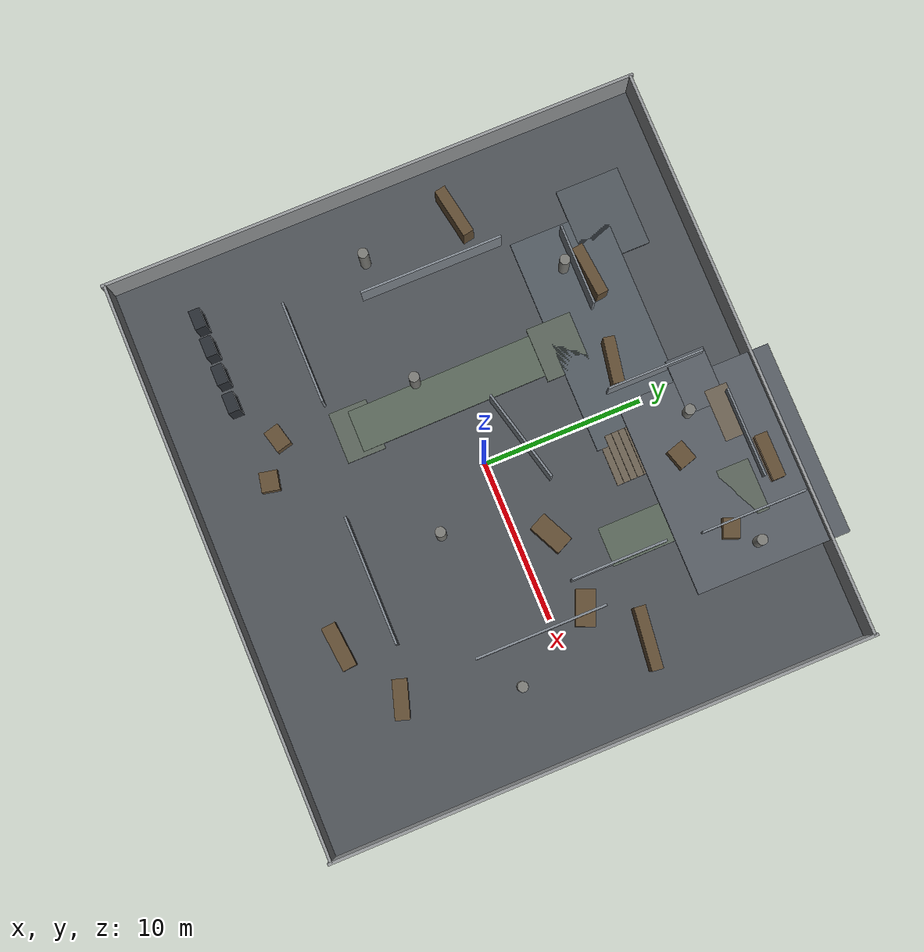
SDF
<?xml version="1.0"?>
<sdf version="1.8">
  <world name="large_multilevel_complex_dynamic">
    <plugin name="gz::sim::systems::Physics" filename="ignition-gazebo-physics-system"/>
    <plugin name="gz::sim::systems::UserCommands" filename="ignition-gazebo-user-commands-system"/>
    <plugin name="gz::sim::systems::SceneBroadcaster" filename="ignition-gazebo-scene-broadcaster-system"/>
    <plugin name="gz::sim::systems::Sensors" filename="ignition-gazebo-sensors-system">
      <render_engine>ogre2</render_engine>
    </plugin>
    <plugin name="gz::sim::systems::Imu" filename="ignition-gazebo-imu-system"/>

    <physics name="large_multilevel_physics" type="ignored">
      <max_step_size>0.01</max_step_size>
      <real_time_update_rate>100</real_time_update_rate>
      <real_time_factor>1.0</real_time_factor>
    </physics>
    <gravity>0 0 -9.8</gravity>
    <magnetic_field>6.0e-06 2.3e-05 -4.2e-05</magnetic_field>
    <scene>
      <ambient>0.66 0.67 0.70 1</ambient>
      <background>0.11 0.12 0.14 1</background>
      <shadows>false</shadows>
    </scene>

    <gui fullscreen="0">
      <camera name="user_camera">
        <pose>-13.5 -18.0 8.0 0 0.48 0.74</pose>
        <projection_type>perspective</projection_type>
      </camera>
    </gui>

    <light name="sun" type="directional">
      <cast_shadows>false</cast_shadows>
      <pose>0 0 18 0 0 0</pose>
      <diffuse>0.95 0.95 0.95 1</diffuse>
      <specular>0.12 0.12 0.12 1</specular>
      <attenuation>
        <range>1000</range>
        <constant>0.9</constant>
        <linear>0.01</linear>
        <quadratic>0.001</quadratic>
      </attenuation>
      <direction>-0.25 0.35 -1</direction>
    </light>

    <model name="floor_level_0">
      <static>true</static>
      <pose>0.000 0.000 -0.050 0.0000 0.0000 0.0000</pose>
      <link name="link">
        <collision name="collision"><geometry><box><size>36.000 34.000 0.100</size></box></geometry></collision>
        <visual name="visual"><geometry><box><size>36.000 34.000 0.100</size></box></geometry><material><ambient>0.30 0.32 0.34 1</ambient><diffuse>0.30 0.32 0.34 1</diffuse></material></visual>
      </link>
    </model>
    <model name="second_floor_deck">
      <static>true</static>
      <pose>-4.800 9.400 0.860 0.0000 0.0000 0.0000</pose>
      <link name="link">
        <collision name="collision"><geometry><box><size>13.500 6.000 0.160</size></box></geometry></collision>
        <visual name="visual"><geometry><box><size>13.500 6.000 0.160</size></box></geometry><material><ambient>0.32 0.35 0.38 1</ambient><diffuse>0.32 0.35 0.38 1</diffuse></material></visual>
      </link>
    </model>
    <model name="third_floor_deck">
      <static>true</static>
      <pose>6.000 13.200 2.120 0.0000 0.0000 0.0000</pose>
      <link name="link">
        <collision name="collision"><geometry><box><size>12.000 9.600 0.160</size></box></geometry></collision>
        <visual name="visual"><geometry><box><size>12.000 9.600 0.160</size></box></geometry><material><ambient>0.34 0.36 0.39 1</ambient><diffuse>0.34 0.36 0.39 1</diffuse></material></visual>
      </link>
    </model>
    <model name="north_mezzanine_walkway">
      <static>true</static>
      <pose>-11.000 12.200 0.860 0.0000 0.0000 0.0000</pose>
      <link name="link">
        <collision name="collision"><geometry><box><size>5.000 4.000 0.160</size></box></geometry></collision>
        <visual name="visual"><geometry><box><size>5.000 4.000 0.160</size></box></geometry><material><ambient>0.31 0.34 0.36 1</ambient><diffuse>0.31 0.34 0.36 1</diffuse></material></visual>
      </link>
    </model>
    <model name="third_observation_bridge">
      <static>true</static>
      <pose>0.400 13.200 2.120 0.0000 0.0000 0.0000</pose>
      <link name="link">
        <collision name="collision"><geometry><box><size>3.400 2.400 0.160</size></box></geometry></collision>
        <visual name="visual"><geometry><box><size>3.400 2.400 0.160</size></box></geometry><material><ambient>0.34 0.36 0.39 1</ambient><diffuse>0.34 0.36 0.39 1</diffuse></material></visual>
      </link>
    </model>
    <model name="lower_access_ramp">
      <static>true</static>
      <pose>-4.700 -0.200 0.440 0.0000 -0.0678 1.5708</pose>
      <link name="link">
        <collision name="collision"><geometry><box><size>12.400 2.600 0.160</size></box></geometry></collision>
        <visual name="visual"><geometry><box><size>12.400 2.600 0.160</size></box></geometry><material><ambient>0.35 0.40 0.35 1</ambient><diffuse>0.35 0.40 0.35 1</diffuse></material></visual>
      </link>
    </model>
    <model name="ramp_lower_landing">
      <static>true</static>
      <pose>-4.700 -6.300 0.040 0.0000 0.0000 0.0000</pose>
      <link name="link">
        <collision name="collision"><geometry><box><size>3.200 2.400 0.120</size></box></geometry></collision>
        <visual name="visual"><geometry><box><size>3.200 2.400 0.120</size></box></geometry><material><ambient>0.35 0.39 0.35 1</ambient><diffuse>0.35 0.39 0.35 1</diffuse></material></visual>
      </link>
    </model>
    <model name="ramp_upper_landing">
      <static>true</static>
      <pose>-4.700 6.700 0.860 0.0000 0.0000 0.0000</pose>
      <link name="link">
        <collision name="collision"><geometry><box><size>3.400 2.800 0.160</size></box></geometry></collision>
        <visual name="visual"><geometry><box><size>3.400 2.800 0.160</size></box></geometry><material><ambient>0.35 0.39 0.35 1</ambient><diffuse>0.35 0.39 0.35 1</diffuse></material></visual>
      </link>
    </model>
    <model name="north_stair_step_01">
      <static>true</static>
      <pose>2.800 6.910 0.899 0.0000 0.0000 0.0000</pose>
      <link name="link">
        <collision name="collision"><geometry><box><size>3.000 0.420 0.080</size></box></geometry></collision>
        <visual name="visual"><geometry><box><size>3.000 0.420 0.080</size></box></geometry><material><ambient>0.42 0.38 0.32 1</ambient><diffuse>0.42 0.38 0.32 1</diffuse></material></visual>
      </link>
    </model>
    <model name="north_stair_step_02">
      <static>true</static>
      <pose>2.800 7.330 0.978 0.0000 0.0000 0.0000</pose>
      <link name="link">
        <collision name="collision"><geometry><box><size>3.000 0.420 0.080</size></box></geometry></collision>
        <visual name="visual"><geometry><box><size>3.000 0.420 0.080</size></box></geometry><material><ambient>0.42 0.38 0.32 1</ambient><diffuse>0.42 0.38 0.32 1</diffuse></material></visual>
      </link>
    </model>
    <model name="north_stair_step_03">
      <static>true</static>
      <pose>2.800 7.750 1.056 0.0000 0.0000 0.0000</pose>
      <link name="link">
        <collision name="collision"><geometry><box><size>3.000 0.420 0.080</size></box></geometry></collision>
        <visual name="visual"><geometry><box><size>3.000 0.420 0.080</size></box></geometry><material><ambient>0.42 0.38 0.32 1</ambient><diffuse>0.42 0.38 0.32 1</diffuse></material></visual>
      </link>
    </model>
    <model name="north_stair_step_04">
      <static>true</static>
      <pose>2.800 8.170 1.135 0.0000 0.0000 0.0000</pose>
      <link name="link">
        <collision name="collision"><geometry><box><size>3.000 0.420 0.080</size></box></geometry></collision>
        <visual name="visual"><geometry><box><size>3.000 0.420 0.080</size></box></geometry><material><ambient>0.42 0.38 0.32 1</ambient><diffuse>0.42 0.38 0.32 1</diffuse></material></visual>
      </link>
    </model>
    <model name="north_stair_step_05">
      <static>true</static>
      <pose>2.800 8.590 1.214 0.0000 0.0000 0.0000</pose>
      <link name="link">
        <collision name="collision"><geometry><box><size>3.000 0.420 0.080</size></box></geometry></collision>
        <visual name="visual"><geometry><box><size>3.000 0.420 0.080</size></box></geometry><material><ambient>0.42 0.38 0.32 1</ambient><diffuse>0.42 0.38 0.32 1</diffuse></material></visual>
      </link>
    </model>
    <model name="north_stair_step_06">
      <static>true</static>
      <pose>2.800 9.010 1.292 0.0000 0.0000 0.0000</pose>
      <link name="link">
        <collision name="collision"><geometry><box><size>3.000 0.420 0.080</size></box></geometry></collision>
        <visual name="visual"><geometry><box><size>3.000 0.420 0.080</size></box></geometry><material><ambient>0.42 0.38 0.32 1</ambient><diffuse>0.42 0.38 0.32 1</diffuse></material></visual>
      </link>
    </model>
    <model name="north_stair_step_07">
      <static>true</static>
      <pose>2.800 9.430 1.371 0.0000 0.0000 0.0000</pose>
      <link name="link">
        <collision name="collision"><geometry><box><size>3.000 0.420 0.080</size></box></geometry></collision>
        <visual name="visual"><geometry><box><size>3.000 0.420 0.080</size></box></geometry><material><ambient>0.42 0.38 0.32 1</ambient><diffuse>0.42 0.38 0.32 1</diffuse></material></visual>
      </link>
    </model>
    <model name="north_stair_step_08">
      <static>true</static>
      <pose>2.800 9.850 1.450 0.0000 0.0000 0.0000</pose>
      <link name="link">
        <collision name="collision"><geometry><box><size>3.000 0.420 0.080</size></box></geometry></collision>
        <visual name="visual"><geometry><box><size>3.000 0.420 0.080</size></box></geometry><material><ambient>0.42 0.38 0.32 1</ambient><diffuse>0.42 0.38 0.32 1</diffuse></material></visual>
      </link>
    </model>
    <model name="north_stair_step_09">
      <static>true</static>
      <pose>2.800 10.270 1.529 0.0000 0.0000 0.0000</pose>
      <link name="link">
        <collision name="collision"><geometry><box><size>3.000 0.420 0.080</size></box></geometry></collision>
        <visual name="visual"><geometry><box><size>3.000 0.420 0.080</size></box></geometry><material><ambient>0.42 0.38 0.32 1</ambient><diffuse>0.42 0.38 0.32 1</diffuse></material></visual>
      </link>
    </model>
    <model name="north_stair_step_10">
      <static>true</static>
      <pose>2.800 10.690 1.607 0.0000 0.0000 0.0000</pose>
      <link name="link">
        <collision name="collision"><geometry><box><size>3.000 0.420 0.080</size></box></geometry></collision>
        <visual name="visual"><geometry><box><size>3.000 0.420 0.080</size></box></geometry><material><ambient>0.42 0.38 0.32 1</ambient><diffuse>0.42 0.38 0.32 1</diffuse></material></visual>
      </link>
    </model>
    <model name="north_stair_step_11">
      <static>true</static>
      <pose>2.800 11.110 1.686 0.0000 0.0000 0.0000</pose>
      <link name="link">
        <collision name="collision"><geometry><box><size>3.000 0.420 0.080</size></box></geometry></collision>
        <visual name="visual"><geometry><box><size>3.000 0.420 0.080</size></box></geometry><material><ambient>0.42 0.38 0.32 1</ambient><diffuse>0.42 0.38 0.32 1</diffuse></material></visual>
      </link>
    </model>
    <model name="north_stair_step_12">
      <static>true</static>
      <pose>2.800 11.530 1.765 0.0000 0.0000 0.0000</pose>
      <link name="link">
        <collision name="collision"><geometry><box><size>3.000 0.420 0.080</size></box></geometry></collision>
        <visual name="visual"><geometry><box><size>3.000 0.420 0.080</size></box></geometry><material><ambient>0.42 0.38 0.32 1</ambient><diffuse>0.42 0.38 0.32 1</diffuse></material></visual>
      </link>
    </model>
    <model name="north_stair_step_13">
      <static>true</static>
      <pose>2.800 11.950 1.844 0.0000 0.0000 0.0000</pose>
      <link name="link">
        <collision name="collision"><geometry><box><size>3.000 0.420 0.080</size></box></geometry></collision>
        <visual name="visual"><geometry><box><size>3.000 0.420 0.080</size></box></geometry><material><ambient>0.42 0.38 0.32 1</ambient><diffuse>0.42 0.38 0.32 1</diffuse></material></visual>
      </link>
    </model>
    <model name="north_stair_step_14">
      <static>true</static>
      <pose>2.800 12.370 1.923 0.0000 0.0000 0.0000</pose>
      <link name="link">
        <collision name="collision"><geometry><box><size>3.000 0.420 0.080</size></box></geometry></collision>
        <visual name="visual"><geometry><box><size>3.000 0.420 0.080</size></box></geometry><material><ambient>0.42 0.38 0.32 1</ambient><diffuse>0.42 0.38 0.32 1</diffuse></material></visual>
      </link>
    </model>
    <model name="north_stair_step_15">
      <static>true</static>
      <pose>2.800 12.790 2.001 0.0000 0.0000 0.0000</pose>
      <link name="link">
        <collision name="collision"><geometry><box><size>3.000 0.420 0.080</size></box></geometry></collision>
        <visual name="visual"><geometry><box><size>3.000 0.420 0.080</size></box></geometry><material><ambient>0.42 0.38 0.32 1</ambient><diffuse>0.42 0.38 0.32 1</diffuse></material></visual>
      </link>
    </model>
    <model name="north_stair_step_16">
      <static>true</static>
      <pose>2.800 13.210 2.080 0.0000 0.0000 0.0000</pose>
      <link name="link">
        <collision name="collision"><geometry><box><size>3.000 0.420 0.080</size></box></geometry></collision>
        <visual name="visual"><geometry><box><size>3.000 0.420 0.080</size></box></geometry><material><ambient>0.42 0.38 0.32 1</ambient><diffuse>0.42 0.38 0.32 1</diffuse></material></visual>
      </link>
    </model>
    <model name="stair_mid_landing">
      <static>true</static>
      <pose>2.800 14.120 2.120 0.0000 0.0000 0.0000</pose>
      <link name="link">
        <collision name="collision"><geometry><box><size>3.200 1.400 0.160</size></box></geometry></collision>
        <visual name="visual"><geometry><box><size>3.200 1.400 0.160</size></box></geometry><material><ambient>0.42 0.38 0.32 1</ambient><diffuse>0.42 0.38 0.32 1</diffuse></material></visual>
      </link>
    </model>
    <model name="upper_service_ramp">
      <static>true</static>
      <pose>7.400 9.000 1.550 0.1150 0.0000 0.0000</pose>
      <link name="link">
        <collision name="collision"><geometry><box><size>2.400 8.800 0.140</size></box></geometry></collision>
        <visual name="visual"><geometry><box><size>2.400 8.800 0.140</size></box></geometry><material><ambient>0.35 0.40 0.35 1</ambient><diffuse>0.35 0.40 0.35 1</diffuse></material></visual>
      </link>
    </model>
    <model name="upper_ramp_landing">
      <static>true</static>
      <pose>7.400 13.200 2.120 0.0000 0.0000 0.0000</pose>
      <link name="link">
        <collision name="collision"><geometry><box><size>3.200 2.000 0.160</size></box></geometry></collision>
        <visual name="visual"><geometry><box><size>3.200 2.000 0.160</size></box></geometry><material><ambient>0.35 0.39 0.35 1</ambient><diffuse>0.35 0.39 0.35 1</diffuse></material></visual>
      </link>
    </model>
    <model name="north_wall">
      <static>true</static>
      <pose>0.000 16.800 1.350 0.0000 0.0000 0.0000</pose>
      <link name="link">
        <collision name="collision"><geometry><box><size>36.000 0.180 2.700</size></box></geometry></collision>
        <visual name="visual"><geometry><box><size>36.000 0.180 2.700</size></box></geometry><material><ambient>0.58 0.59 0.60 1</ambient><diffuse>0.58 0.59 0.60 1</diffuse></material></visual>
      </link>
    </model>
    <model name="south_wall">
      <static>true</static>
      <pose>0.000 -16.800 1.350 0.0000 0.0000 0.0000</pose>
      <link name="link">
        <collision name="collision"><geometry><box><size>36.000 0.180 2.700</size></box></geometry></collision>
        <visual name="visual"><geometry><box><size>36.000 0.180 2.700</size></box></geometry><material><ambient>0.58 0.59 0.60 1</ambient><diffuse>0.58 0.59 0.60 1</diffuse></material></visual>
      </link>
    </model>
    <model name="west_wall">
      <static>true</static>
      <pose>-18.000 0.000 1.350 0.0000 0.0000 0.0000</pose>
      <link name="link">
        <collision name="collision"><geometry><box><size>0.180 34.000 2.700</size></box></geometry></collision>
        <visual name="visual"><geometry><box><size>0.180 34.000 2.700</size></box></geometry><material><ambient>0.58 0.59 0.60 1</ambient><diffuse>0.58 0.59 0.60 1</diffuse></material></visual>
      </link>
    </model>
    <model name="east_wall">
      <static>true</static>
      <pose>18.000 0.000 1.350 0.0000 0.0000 0.0000</pose>
      <link name="link">
        <collision name="collision"><geometry><box><size>0.180 34.000 2.700</size></box></geometry></collision>
        <visual name="visual"><geometry><box><size>0.180 34.000 2.700</size></box></geometry><material><ambient>0.58 0.59 0.60 1</ambient><diffuse>0.58 0.59 0.60 1</diffuse></material></visual>
      </link>
    </model>
    <model name="floor_partition_00">
      <static>true</static>
      <pose>-10.000 -7.500 1.050 0.0000 0.0000 0.0000</pose>
      <link name="link">
        <collision name="collision"><geometry><box><size>6.400 0.140 2.100</size></box></geometry></collision>
        <visual name="visual"><geometry><box><size>6.400 0.140 2.100</size></box></geometry><material><ambient>0.50 0.53 0.56 1</ambient><diffuse>0.50 0.53 0.56 1</diffuse></material></visual>
      </link>
    </model>
    <model name="floor_partition_01">
      <static>true</static>
      <pose>4.000 -8.800 1.050 0.0000 0.0000 0.0000</pose>
      <link name="link">
        <collision name="collision"><geometry><box><size>8.000 0.140 2.100</size></box></geometry></collision>
        <visual name="visual"><geometry><box><size>8.000 0.140 2.100</size></box></geometry><material><ambient>0.50 0.53 0.56 1</ambient><diffuse>0.50 0.53 0.56 1</diffuse></material></visual>
      </link>
    </model>
    <model name="floor_partition_02">
      <static>true</static>
      <pose>-12.000 1.500 1.050 0.0000 0.0000 0.0000</pose>
      <link name="link">
        <collision name="collision"><geometry><box><size>0.140 9.000 2.100</size></box></geometry></collision>
        <visual name="visual"><geometry><box><size>0.140 9.000 2.100</size></box></geometry><material><ambient>0.50 0.53 0.56 1</ambient><diffuse>0.50 0.53 0.56 1</diffuse></material></visual>
      </link>
    </model>
    <model name="floor_partition_03">
      <static>true</static>
      <pose>10.500 -0.800 1.050 0.0000 0.0000 0.0000</pose>
      <link name="link">
        <collision name="collision"><geometry><box><size>0.140 8.200 2.100</size></box></geometry></collision>
        <visual name="visual"><geometry><box><size>0.140 8.200 2.100</size></box></geometry><material><ambient>0.50 0.53 0.56 1</ambient><diffuse>0.50 0.53 0.56 1</diffuse></material></visual>
      </link>
    </model>
    <model name="floor_partition_04">
      <static>true</static>
      <pose>-0.500 2.500 1.050 0.0000 0.0000 0.2500</pose>
      <link name="link">
        <collision name="collision"><geometry><box><size>6.000 0.140 2.100</size></box></geometry></collision>
        <visual name="visual"><geometry><box><size>6.000 0.140 2.100</size></box></geometry><material><ambient>0.50 0.53 0.56 1</ambient><diffuse>0.50 0.53 0.56 1</diffuse></material></visual>
      </link>
    </model>
    <model name="floor_partition_05">
      <static>true</static>
      <pose>8.400 5.000 1.050 0.0000 0.0000 0.0000</pose>
      <link name="link">
        <collision name="collision"><geometry><box><size>0.140 6.000 2.100</size></box></geometry></collision>
        <visual name="visual"><geometry><box><size>0.140 6.000 2.100</size></box></geometry><material><ambient>0.50 0.53 0.56 1</ambient><diffuse>0.50 0.53 0.56 1</diffuse></material></visual>
      </link>
    </model>
    <model name="upper_partition_00">
      <static>true</static>
      <pose>-8.500 9.400 2.050 0.0000 0.0000 0.0000</pose>
      <link name="link">
        <collision name="collision"><geometry><box><size>5.000 0.120 2.000</size></box></geometry></collision>
        <visual name="visual"><geometry><box><size>5.000 0.120 2.000</size></box></geometry><material><ambient>0.50 0.53 0.56 1</ambient><diffuse>0.50 0.53 0.56 1</diffuse></material></visual>
      </link>
    </model>
    <model name="upper_partition_01">
      <static>true</static>
      <pose>-1.000 11.200 2.050 0.0000 0.0000 0.0000</pose>
      <link name="link">
        <collision name="collision"><geometry><box><size>0.120 6.000 2.000</size></box></geometry></collision>
        <visual name="visual"><geometry><box><size>0.120 6.000 2.000</size></box></geometry><material><ambient>0.50 0.53 0.56 1</ambient><diffuse>0.50 0.53 0.56 1</diffuse></material></visual>
      </link>
    </model>
    <model name="upper_partition_02">
      <static>true</static>
      <pose>8.800 13.200 2.050 0.0000 0.0000 0.0000</pose>
      <link name="link">
        <collision name="collision"><geometry><box><size>0.120 6.500 2.000</size></box></geometry></collision>
        <visual name="visual"><geometry><box><size>0.120 6.500 2.000</size></box></geometry><material><ambient>0.50 0.53 0.56 1</ambient><diffuse>0.50 0.53 0.56 1</diffuse></material></visual>
      </link>
    </model>
    <model name="upper_partition_03">
      <static>true</static>
      <pose>4.400 14.600 2.050 0.0000 0.0000 0.0000</pose>
      <link name="link">
        <collision name="collision"><geometry><box><size>5.500 0.120 2.000</size></box></geometry></collision>
        <visual name="visual"><geometry><box><size>5.500 0.120 2.000</size></box></geometry><material><ambient>0.50 0.53 0.56 1</ambient><diffuse>0.50 0.53 0.56 1</diffuse></material></visual>
      </link>
    </model>
    <model name="server_rack_00">
      <static>true</static>
      <pose>-14.200 -12.500 1.050 0.0000 0.0000 0.0000</pose>
      <link name="link">
        <collision name="collision"><geometry><box><size>1.200 0.700 2.100</size></box></geometry></collision>
        <visual name="visual"><geometry><box><size>1.200 0.700 2.100</size></box></geometry><material><ambient>0.16 0.18 0.20 1</ambient><diffuse>0.16 0.18 0.20 1</diffuse></material></visual>
      </link>
    </model>
    <model name="server_rack_01">
      <static>true</static>
      <pose>-12.400 -12.500 1.050 0.0000 0.0000 0.0000</pose>
      <link name="link">
        <collision name="collision"><geometry><box><size>1.200 0.700 2.100</size></box></geometry></collision>
        <visual name="visual"><geometry><box><size>1.200 0.700 2.100</size></box></geometry><material><ambient>0.16 0.18 0.20 1</ambient><diffuse>0.16 0.18 0.20 1</diffuse></material></visual>
      </link>
    </model>
    <model name="server_rack_02">
      <static>true</static>
      <pose>-10.600 -12.500 1.050 0.0000 0.0000 0.0000</pose>
      <link name="link">
        <collision name="collision"><geometry><box><size>1.200 0.700 2.100</size></box></geometry></collision>
        <visual name="visual"><geometry><box><size>1.200 0.700 2.100</size></box></geometry><material><ambient>0.16 0.18 0.20 1</ambient><diffuse>0.16 0.18 0.20 1</diffuse></material></visual>
      </link>
    </model>
    <model name="server_rack_03">
      <static>true</static>
      <pose>-8.800 -12.500 1.050 0.0000 0.0000 0.0000</pose>
      <link name="link">
        <collision name="collision"><geometry><box><size>1.200 0.700 2.100</size></box></geometry></collision>
        <visual name="visual"><geometry><box><size>1.200 0.700 2.100</size></box></geometry><material><ambient>0.16 0.18 0.20 1</ambient><diffuse>0.16 0.18 0.20 1</diffuse></material></visual>
      </link>
    </model>
    <model name="crate_cluster_04">
      <static>true</static>
      <pose>-6.000 -10.800 0.450 0.0000 0.0000 0.2500</pose>
      <link name="link">
        <collision name="collision"><geometry><box><size>1.400 1.000 0.900</size></box></geometry></collision>
        <visual name="visual"><geometry><box><size>1.400 1.000 0.900</size></box></geometry><material><ambient>0.38 0.30 0.20 1</ambient><diffuse>0.38 0.30 0.20 1</diffuse></material></visual>
      </link>
    </model>
    <model name="crate_cluster_05">
      <static>true</static>
      <pose>-3.800 -12.200 0.400 0.0000 0.0000 -0.2000</pose>
      <link name="link">
        <collision name="collision"><geometry><box><size>1.200 1.100 0.800</size></box></geometry></collision>
        <visual name="visual"><geometry><box><size>1.200 1.100 0.800</size></box></geometry><material><ambient>0.38 0.30 0.20 1</ambient><diffuse>0.38 0.30 0.20 1</diffuse></material></visual>
      </link>
    </model>
    <model name="workbench_06">
      <static>true</static>
      <pose>6.800 -12.000 0.450 0.0000 0.0000 0.1000</pose>
      <link name="link">
        <collision name="collision"><geometry><box><size>2.800 0.900 0.900</size></box></geometry></collision>
        <visual name="visual"><geometry><box><size>2.800 0.900 0.900</size></box></geometry><material><ambient>0.38 0.30 0.20 1</ambient><diffuse>0.38 0.30 0.20 1</diffuse></material></visual>
      </link>
    </model>
    <model name="workbench_07">
      <static>true</static>
      <pose>11.000 -9.800 0.450 0.0000 0.0000 -0.3000</pose>
      <link name="link">
        <collision name="collision"><geometry><box><size>2.400 0.900 0.900</size></box></geometry></collision>
        <visual name="visual"><geometry><box><size>2.400 0.900 0.900</size></box></geometry><material><ambient>0.38 0.30 0.20 1</ambient><diffuse>0.38 0.30 0.20 1</diffuse></material></visual>
      </link>
    </model>
    <model name="shelf_08">
      <static>true</static>
      <pose>-14.500 4.000 1.000 0.0000 0.0000 0.1800</pose>
      <link name="link">
        <collision name="collision"><geometry><box><size>3.200 0.700 2.000</size></box></geometry></collision>
        <visual name="visual"><geometry><box><size>3.200 0.700 2.000</size></box></geometry><material><ambient>0.38 0.30 0.20 1</ambient><diffuse>0.38 0.30 0.20 1</diffuse></material></visual>
      </link>
    </model>
    <model name="shelf_09">
      <static>true</static>
      <pose>13.200 4.800 1.000 0.0000 0.0000 -0.1200</pose>
      <link name="link">
        <collision name="collision"><geometry><box><size>3.800 0.700 2.000</size></box></geometry></collision>
        <visual name="visual"><geometry><box><size>3.800 0.700 2.000</size></box></geometry><material><ambient>0.38 0.30 0.20 1</ambient><diffuse>0.38 0.30 0.20 1</diffuse></material></visual>
      </link>
    </model>
    <model name="lab_table_10">
      <static>true</static>
      <pose>5.400 2.000 0.425 0.0000 0.0000 0.4500</pose>
      <link name="link">
        <collision name="collision"><geometry><box><size>2.200 1.200 0.850</size></box></geometry></collision>
        <visual name="visual"><geometry><box><size>2.200 1.200 0.850</size></box></geometry><material><ambient>0.38 0.30 0.20 1</ambient><diffuse>0.38 0.30 0.20 1</diffuse></material></visual>
      </link>
    </model>
    <model name="lab_table_11">
      <static>true</static>
      <pose>10.200 2.200 0.425 0.0000 0.0000 -0.4000</pose>
      <link name="link">
        <collision name="collision"><geometry><box><size>2.200 1.200 0.850</size></box></geometry></collision>
        <visual name="visual"><geometry><box><size>2.200 1.200 0.850</size></box></geometry><material><ambient>0.38 0.30 0.20 1</ambient><diffuse>0.38 0.30 0.20 1</diffuse></material></visual>
      </link>
    </model>
    <model name="upper_shelf_12">
      <static>true</static>
      <pose>-8.000 10.000 1.760 0.0000 0.0000 0.1000</pose>
      <link name="link">
        <collision name="collision"><geometry><box><size>3.200 0.700 1.800</size></box></geometry></collision>
        <visual name="visual"><geometry><box><size>3.200 0.700 1.800</size></box></geometry><material><ambient>0.38 0.30 0.20 1</ambient><diffuse>0.38 0.30 0.20 1</diffuse></material></visual>
      </link>
    </model>
    <model name="upper_shelf_13">
      <static>true</static>
      <pose>-2.500 9.200 1.760 0.0000 0.0000 -0.1800</pose>
      <link name="link">
        <collision name="collision"><geometry><box><size>2.800 0.700 1.800</size></box></geometry></collision>
        <visual name="visual"><geometry><box><size>2.800 0.700 1.800</size></box></geometry><material><ambient>0.38 0.30 0.20 1</ambient><diffuse>0.38 0.30 0.20 1</diffuse></material></visual>
      </link>
    </model>
    <model name="upper_lab_bench_14">
      <static>true</static>
      <pose>5.500 12.000 1.285 0.0000 0.0000 0.3500</pose>
      <link name="link">
        <collision name="collision"><geometry><box><size>2.400 1.000 0.850</size></box></geometry></collision>
        <visual name="visual"><geometry><box><size>2.400 1.000 0.850</size></box></geometry><material><ambient>0.38 0.30 0.20 1</ambient><diffuse>0.38 0.30 0.20 1</diffuse></material></visual>
      </link>
    </model>
    <model name="upper_lab_bench_15">
      <static>true</static>
      <pose>9.400 14.400 1.285 0.0000 0.0000 -0.2000</pose>
      <link name="link">
        <collision name="collision"><geometry><box><size>2.400 1.000 0.850</size></box></geometry></collision>
        <visual name="visual"><geometry><box><size>2.400 1.000 0.850</size></box></geometry><material><ambient>0.38 0.30 0.20 1</ambient><diffuse>0.38 0.30 0.20 1</diffuse></material></visual>
      </link>
    </model>
    <model name="third_crate_16">
      <static>true</static>
      <pose>4.200 10.600 2.570 0.0000 0.0000 0.3000</pose>
      <link name="link">
        <collision name="collision"><geometry><box><size>1.300 1.100 0.900</size></box></geometry></collision>
        <visual name="visual"><geometry><box><size>1.300 1.100 0.900</size></box></geometry><material><ambient>0.38 0.30 0.20 1</ambient><diffuse>0.38 0.30 0.20 1</diffuse></material></visual>
      </link>
    </model>
    <model name="third_crate_17">
      <static>true</static>
      <pose>9.200 11.600 2.570 0.0000 0.0000 -0.4000</pose>
      <link name="link">
        <collision name="collision"><geometry><box><size>1.200 1.000 0.900</size></box></geometry></collision>
        <visual name="visual"><geometry><box><size>1.200 1.000 0.900</size></box></geometry><material><ambient>0.38 0.30 0.20 1</ambient><diffuse>0.38 0.30 0.20 1</diffuse></material></visual>
      </link>
    </model>
    <model name="third_console_18">
      <static>true</static>
      <pose>6.200 15.300 2.570 0.0000 0.0000 0.0000</pose>
      <link name="link">
        <collision name="collision"><geometry><box><size>2.800 0.800 0.900</size></box></geometry></collision>
        <visual name="visual"><geometry><box><size>2.800 0.800 0.900</size></box></geometry><material><ambient>0.38 0.30 0.20 1</ambient><diffuse>0.38 0.30 0.20 1</diffuse></material></visual>
      </link>
    </model>
    <model name="round_column_00">
      <static>true</static>
      <pose>-14.000 -2.000 1.350 0.0000 0.0000 0.0000</pose>
      <link name="link">
        <collision name="collision"><geometry><cylinder><radius>0.320</radius><length>2.700</length></cylinder></geometry></collision>
        <visual name="visual"><geometry><cylinder><radius>0.320</radius><length>2.700</length></cylinder></geometry><material><ambient>0.48 0.48 0.46 1</ambient><diffuse>0.48 0.48 0.46 1</diffuse></material></visual>
      </link>
    </model>
    <model name="round_column_01">
      <static>true</static>
      <pose>-6.000 -2.000 1.350 0.0000 0.0000 0.0000</pose>
      <link name="link">
        <collision name="collision"><geometry><cylinder><radius>0.320</radius><length>2.700</length></cylinder></geometry></collision>
        <visual name="visual"><geometry><cylinder><radius>0.320</radius><length>2.700</length></cylinder></geometry><material><ambient>0.48 0.48 0.46 1</ambient><diffuse>0.48 0.48 0.46 1</diffuse></material></visual>
      </link>
    </model>
    <model name="round_column_02">
      <static>true</static>
      <pose>3.000 -4.000 1.350 0.0000 0.0000 0.0000</pose>
      <link name="link">
        <collision name="collision"><geometry><cylinder><radius>0.320</radius><length>2.700</length></cylinder></geometry></collision>
        <visual name="visual"><geometry><cylinder><radius>0.320</radius><length>2.700</length></cylinder></geometry><material><ambient>0.48 0.48 0.46 1</ambient><diffuse>0.48 0.48 0.46 1</diffuse></material></visual>
      </link>
    </model>
    <model name="round_column_03">
      <static>true</static>
      <pose>13.000 -3.000 1.350 0.0000 0.0000 0.0000</pose>
      <link name="link">
        <collision name="collision"><geometry><cylinder><radius>0.320</radius><length>2.700</length></cylinder></geometry></collision>
        <visual name="visual"><geometry><cylinder><radius>0.320</radius><length>2.700</length></cylinder></geometry><material><ambient>0.48 0.48 0.46 1</ambient><diffuse>0.48 0.48 0.46 1</diffuse></material></visual>
      </link>
    </model>
    <model name="round_column_04">
      <static>true</static>
      <pose>-9.000 8.800 2.000 0.0000 0.0000 0.0000</pose>
      <link name="link">
        <collision name="collision"><geometry><cylinder><radius>0.320</radius><length>2.400</length></cylinder></geometry></collision>
        <visual name="visual"><geometry><cylinder><radius>0.320</radius><length>2.400</length></cylinder></geometry><material><ambient>0.48 0.48 0.46 1</ambient><diffuse>0.48 0.48 0.46 1</diffuse></material></visual>
      </link>
    </model>
    <model name="round_column_05">
      <static>true</static>
      <pose>2.000 12.000 2.500 0.0000 0.0000 0.0000</pose>
      <link name="link">
        <collision name="collision"><geometry><cylinder><radius>0.320</radius><length>2.200</length></cylinder></geometry></collision>
        <visual name="visual"><geometry><cylinder><radius>0.320</radius><length>2.200</length></cylinder></geometry><material><ambient>0.48 0.48 0.46 1</ambient><diffuse>0.48 0.48 0.46 1</diffuse></material></visual>
      </link>
    </model>
    <model name="round_column_06">
      <static>true</static>
      <pose>10.500 12.800 3.000 0.0000 0.0000 0.0000</pose>
      <link name="link">
        <collision name="collision"><geometry><cylinder><radius>0.320</radius><length>1.800</length></cylinder></geometry></collision>
        <visual name="visual"><geometry><cylinder><radius>0.320</radius><length>1.800</length></cylinder></geometry><material><ambient>0.48 0.48 0.46 1</ambient><diffuse>0.48 0.48 0.46 1</diffuse></material></visual>
      </link>
    </model>
  </world>
</sdf>
